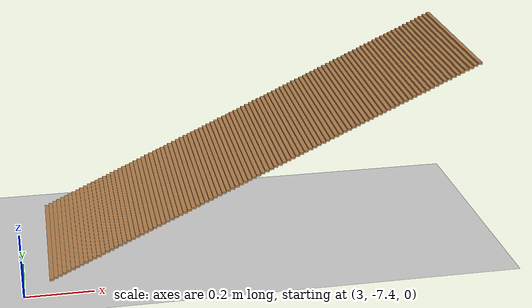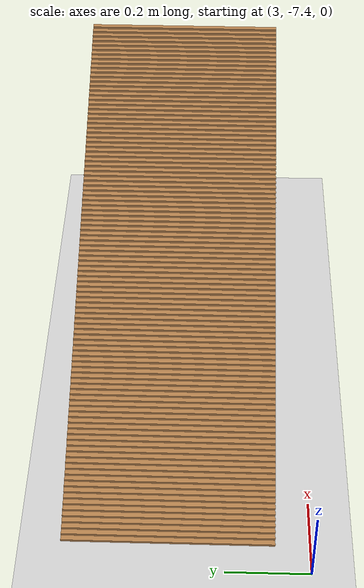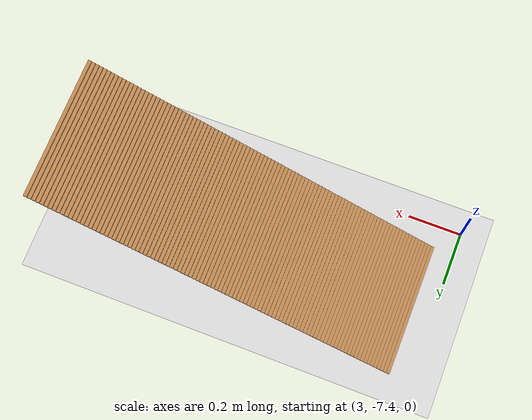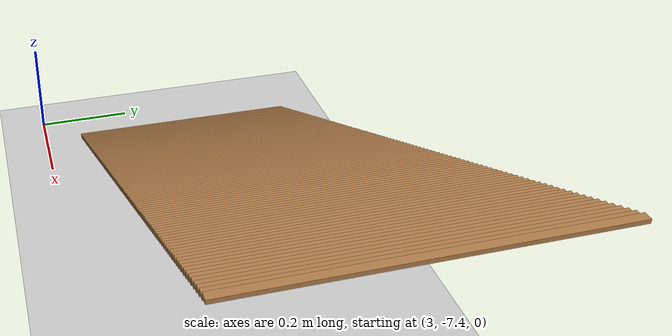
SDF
<sdf version="1.7">
 <world name="default">
  <model name="ground_plane">
   <static>1</static>
   <link name="link">
    <collision name="collision">
     <geometry><plane><normal>0 0 1</normal><size>100 100</size></plane></geometry>
     <surface>
      <contact><collide_bitmask>65535</collide_bitmask></contact>
      <friction><ode><mu>100</mu><mu2>50</mu2></ode></friction>
     </surface>
    </collision>
    <visual name="visual">
     <cast_shadows>0</cast_shadows>
     <geometry><plane><normal>0 0 1</normal><size>100 100</size></plane></geometry>
     <material>
      <script><uri>file://media/materials/scripts/gazebo.material</uri><name>Gazebo/Grey</name></script>
     </material>
    </visual>
   </link>
  </model>
  <model name="arena">
   <pose>3.40282 -3.41988 0 0 0 -1.57675</pose>
   <link name="Stairs_11">
    <visual name="Stairs_11_Visual_0">
     <pose>3.65016 -0.298124 0.003 0 0 -3.14159</pose>
     <geometry><box><size>0.501 0.0129 0.006</size></box></geometry>
     <material>
      <script><uri>file://media/materials/scripts/gazebo.material</uri><name>Gazebo/Wood</name></script>
      <ambient>1 1 1 1</ambient>
     </material>
     <meta><layer>0</layer></meta>
    </visual>
    <collision name="Stairs_11_Collision_0">
     <geometry><box><size>0.501 0.0129 0.006</size></box></geometry>
     <pose>3.65016 -0.298124 0.003 0 0 -3.14159</pose>
    </collision>
    <visual name="Stairs_11_Visual_1">
     <pose>3.65016 -0.285224 0.009 0 0 -3.14159</pose>
     <geometry><box><size>0.501 0.0129 0.006</size></box></geometry>
     <material>
      <script><uri>file://media/materials/scripts/gazebo.material</uri><name>Gazebo/Wood</name></script>
      <ambient>1 1 1 1</ambient>
     </material>
     <meta><layer>0</layer></meta>
    </visual>
    <collision name="Stairs_11_Collision_1">
     <geometry><box><size>0.501 0.0129 0.006</size></box></geometry>
     <pose>3.65016 -0.285224 0.009 0 0 -3.14159</pose>
    </collision>
    <visual name="Stairs_11_Visual_2">
     <pose>3.65016 -0.272324 0.015 0 0 -3.14159</pose>
     <geometry><box><size>0.501 0.0129 0.006</size></box></geometry>
     <material>
      <script><uri>file://media/materials/scripts/gazebo.material</uri><name>Gazebo/Wood</name></script>
      <ambient>1 1 1 1</ambient>
     </material>
     <meta><layer>0</layer></meta>
    </visual>
    <collision name="Stairs_11_Collision_2">
     <geometry><box><size>0.501 0.0129 0.006</size></box></geometry>
     <pose>3.65016 -0.272324 0.015 0 0 -3.14159</pose>
    </collision>
    <visual name="Stairs_11_Visual_3">
     <pose>3.65016 -0.259424 0.021 0 0 -3.14159</pose>
     <geometry><box><size>0.501 0.0129 0.006</size></box></geometry>
     <material>
      <script><uri>file://media/materials/scripts/gazebo.material</uri><name>Gazebo/Wood</name></script>
      <ambient>1 1 1 1</ambient>
     </material>
     <meta><layer>0</layer></meta>
    </visual>
    <collision name="Stairs_11_Collision_3">
     <geometry><box><size>0.501 0.0129 0.006</size></box></geometry>
     <pose>3.65016 -0.259424 0.021 0 0 -3.14159</pose>
    </collision>
    <visual name="Stairs_11_Visual_4">
     <pose>3.65016 -0.246524 0.027 0 0 -3.14159</pose>
     <geometry><box><size>0.501 0.0129 0.006</size></box></geometry>
     <material>
      <script><uri>file://media/materials/scripts/gazebo.material</uri><name>Gazebo/Wood</name></script>
      <ambient>1 1 1 1</ambient>
     </material>
     <meta><layer>0</layer></meta>
    </visual>
    <collision name="Stairs_11_Collision_4">
     <geometry><box><size>0.501 0.0129 0.006</size></box></geometry>
     <pose>3.65016 -0.246524 0.027 0 0 -3.14159</pose>
    </collision>
    <visual name="Stairs_11_Visual_5">
     <pose>3.65016 -0.233624 0.033 0 0 -3.14159</pose>
     <geometry><box><size>0.501 0.0129 0.006</size></box></geometry>
     <material>
      <script><uri>file://media/materials/scripts/gazebo.material</uri><name>Gazebo/Wood</name></script>
      <ambient>1 1 1 1</ambient>
     </material>
     <meta><layer>0</layer></meta>
    </visual>
    <collision name="Stairs_11_Collision_5">
     <geometry><box><size>0.501 0.0129 0.006</size></box></geometry>
     <pose>3.65016 -0.233624 0.033 0 0 -3.14159</pose>
    </collision>
    <visual name="Stairs_11_Visual_6">
     <pose>3.65016 -0.220724 0.039 0 0 -3.14159</pose>
     <geometry><box><size>0.501 0.0129 0.006</size></box></geometry>
     <material>
      <script><uri>file://media/materials/scripts/gazebo.material</uri><name>Gazebo/Wood</name></script>
      <ambient>1 1 1 1</ambient>
     </material>
     <meta><layer>0</layer></meta>
    </visual>
    <collision name="Stairs_11_Collision_6">
     <geometry><box><size>0.501 0.0129 0.006</size></box></geometry>
     <pose>3.65016 -0.220724 0.039 0 0 -3.14159</pose>
    </collision>
    <visual name="Stairs_11_Visual_7">
     <pose>3.65016 -0.207824 0.045 0 0 -3.14159</pose>
     <geometry><box><size>0.501 0.0129 0.006</size></box></geometry>
     <material>
      <script><uri>file://media/materials/scripts/gazebo.material</uri><name>Gazebo/Wood</name></script>
      <ambient>1 1 1 1</ambient>
     </material>
     <meta><layer>0</layer></meta>
    </visual>
    <collision name="Stairs_11_Collision_7">
     <geometry><box><size>0.501 0.0129 0.006</size></box></geometry>
     <pose>3.65016 -0.207824 0.045 0 0 -3.14159</pose>
    </collision>
    <visual name="Stairs_11_Visual_8">
     <pose>3.65016 -0.194924 0.051 0 0 -3.14159</pose>
     <geometry><box><size>0.501 0.0129 0.006</size></box></geometry>
     <material>
      <script><uri>file://media/materials/scripts/gazebo.material</uri><name>Gazebo/Wood</name></script>
      <ambient>1 1 1 1</ambient>
     </material>
     <meta><layer>0</layer></meta>
    </visual>
    <collision name="Stairs_11_Collision_8">
     <geometry><box><size>0.501 0.0129 0.006</size></box></geometry>
     <pose>3.65016 -0.194924 0.051 0 0 -3.14159</pose>
    </collision>
    <visual name="Stairs_11_Visual_9">
     <pose>3.65016 -0.182024 0.057 0 0 -3.14159</pose>
     <geometry><box><size>0.501 0.0129 0.006</size></box></geometry>
     <material>
      <script><uri>file://media/materials/scripts/gazebo.material</uri><name>Gazebo/Wood</name></script>
      <ambient>1 1 1 1</ambient>
     </material>
     <meta><layer>0</layer></meta>
    </visual>
    <collision name="Stairs_11_Collision_9">
     <geometry><box><size>0.501 0.0129 0.006</size></box></geometry>
     <pose>3.65016 -0.182024 0.057 0 0 -3.14159</pose>
    </collision>
    <visual name="Stairs_11_Visual_10">
     <pose>3.65016 -0.169124 0.063 0 0 -3.14159</pose>
     <geometry><box><size>0.501 0.0129 0.006</size></box></geometry>
     <material>
      <script><uri>file://media/materials/scripts/gazebo.material</uri><name>Gazebo/Wood</name></script>
      <ambient>1 1 1 1</ambient>
     </material>
     <meta><layer>0</layer></meta>
    </visual>
    <collision name="Stairs_11_Collision_10">
     <geometry><box><size>0.501 0.0129 0.006</size></box></geometry>
     <pose>3.65016 -0.169124 0.063 0 0 -3.14159</pose>
    </collision>
    <visual name="Stairs_11_Visual_11">
     <pose>3.65016 -0.156224 0.069 0 0 -3.14159</pose>
     <geometry><box><size>0.501 0.0129 0.006</size></box></geometry>
     <material>
      <script><uri>file://media/materials/scripts/gazebo.material</uri><name>Gazebo/Wood</name></script>
      <ambient>1 1 1 1</ambient>
     </material>
     <meta><layer>0</layer></meta>
    </visual>
    <collision name="Stairs_11_Collision_11">
     <geometry><box><size>0.501 0.0129 0.006</size></box></geometry>
     <pose>3.65016 -0.156224 0.069 0 0 -3.14159</pose>
    </collision>
    <visual name="Stairs_11_Visual_12">
     <pose>3.65016 -0.143324 0.075 0 0 -3.14159</pose>
     <geometry><box><size>0.501 0.0129 0.006</size></box></geometry>
     <material>
      <script><uri>file://media/materials/scripts/gazebo.material</uri><name>Gazebo/Wood</name></script>
      <ambient>1 1 1 1</ambient>
     </material>
     <meta><layer>0</layer></meta>
    </visual>
    <collision name="Stairs_11_Collision_12">
     <geometry><box><size>0.501 0.0129 0.006</size></box></geometry>
     <pose>3.65016 -0.143324 0.075 0 0 -3.14159</pose>
    </collision>
    <visual name="Stairs_11_Visual_13">
     <pose>3.65016 -0.130424 0.081 0 0 -3.14159</pose>
     <geometry><box><size>0.501 0.0129 0.006</size></box></geometry>
     <material>
      <script><uri>file://media/materials/scripts/gazebo.material</uri><name>Gazebo/Wood</name></script>
      <ambient>1 1 1 1</ambient>
     </material>
     <meta><layer>0</layer></meta>
    </visual>
    <collision name="Stairs_11_Collision_13">
     <geometry><box><size>0.501 0.0129 0.006</size></box></geometry>
     <pose>3.65016 -0.130424 0.081 0 0 -3.14159</pose>
    </collision>
    <visual name="Stairs_11_Visual_14">
     <pose>3.65016 -0.117524 0.087 0 0 -3.14159</pose>
     <geometry><box><size>0.501 0.0129 0.006</size></box></geometry>
     <material>
      <script><uri>file://media/materials/scripts/gazebo.material</uri><name>Gazebo/Wood</name></script>
      <ambient>1 1 1 1</ambient>
     </material>
     <meta><layer>0</layer></meta>
    </visual>
    <collision name="Stairs_11_Collision_14">
     <geometry><box><size>0.501 0.0129 0.006</size></box></geometry>
     <pose>3.65016 -0.117524 0.087 0 0 -3.14159</pose>
    </collision>
    <visual name="Stairs_11_Visual_15">
     <pose>3.65016 -0.104624 0.093 0 0 -3.14159</pose>
     <geometry><box><size>0.501 0.0129 0.006</size></box></geometry>
     <material>
      <script><uri>file://media/materials/scripts/gazebo.material</uri><name>Gazebo/Wood</name></script>
      <ambient>1 1 1 1</ambient>
     </material>
     <meta><layer>0</layer></meta>
    </visual>
    <collision name="Stairs_11_Collision_15">
     <geometry><box><size>0.501 0.0129 0.006</size></box></geometry>
     <pose>3.65016 -0.104624 0.093 0 0 -3.14159</pose>
    </collision>
    <visual name="Stairs_11_Visual_16">
     <pose>3.65016 -0.091724 0.099 0 0 -3.14159</pose>
     <geometry><box><size>0.501 0.0129 0.006</size></box></geometry>
     <material>
      <script><uri>file://media/materials/scripts/gazebo.material</uri><name>Gazebo/Wood</name></script>
      <ambient>1 1 1 1</ambient>
     </material>
     <meta><layer>0</layer></meta>
    </visual>
    <collision name="Stairs_11_Collision_16">
     <geometry><box><size>0.501 0.0129 0.006</size></box></geometry>
     <pose>3.65016 -0.091724 0.099 0 0 -3.14159</pose>
    </collision>
    <visual name="Stairs_11_Visual_17">
     <pose>3.65016 -0.078824 0.105 0 0 -3.14159</pose>
     <geometry><box><size>0.501 0.0129 0.006</size></box></geometry>
     <material>
      <script><uri>file://media/materials/scripts/gazebo.material</uri><name>Gazebo/Wood</name></script>
      <ambient>1 1 1 1</ambient>
     </material>
     <meta><layer>0</layer></meta>
    </visual>
    <collision name="Stairs_11_Collision_17">
     <geometry><box><size>0.501 0.0129 0.006</size></box></geometry>
     <pose>3.65016 -0.078824 0.105 0 0 -3.14159</pose>
    </collision>
    <visual name="Stairs_11_Visual_18">
     <pose>3.65016 -0.065924 0.111 0 0 -3.14159</pose>
     <geometry><box><size>0.501 0.0129 0.006</size></box></geometry>
     <material>
      <script><uri>file://media/materials/scripts/gazebo.material</uri><name>Gazebo/Wood</name></script>
      <ambient>1 1 1 1</ambient>
     </material>
     <meta><layer>0</layer></meta>
    </visual>
    <collision name="Stairs_11_Collision_18">
     <geometry><box><size>0.501 0.0129 0.006</size></box></geometry>
     <pose>3.65016 -0.065924 0.111 0 0 -3.14159</pose>
    </collision>
    <visual name="Stairs_11_Visual_19">
     <pose>3.65016 -0.053024 0.117 0 0 -3.14159</pose>
     <geometry><box><size>0.501 0.0129 0.006</size></box></geometry>
     <material>
      <script><uri>file://media/materials/scripts/gazebo.material</uri><name>Gazebo/Wood</name></script>
      <ambient>1 1 1 1</ambient>
     </material>
     <meta><layer>0</layer></meta>
    </visual>
    <collision name="Stairs_11_Collision_19">
     <geometry><box><size>0.501 0.0129 0.006</size></box></geometry>
     <pose>3.65016 -0.053024 0.117 0 0 -3.14159</pose>
    </collision>
    <visual name="Stairs_11_Visual_20">
     <pose>3.65016 -0.040124 0.123 0 0 -3.14159</pose>
     <geometry><box><size>0.501 0.0129 0.006</size></box></geometry>
     <material>
      <script><uri>file://media/materials/scripts/gazebo.material</uri><name>Gazebo/Wood</name></script>
      <ambient>1 1 1 1</ambient>
     </material>
     <meta><layer>0</layer></meta>
    </visual>
    <collision name="Stairs_11_Collision_20">
     <geometry><box><size>0.501 0.0129 0.006</size></box></geometry>
     <pose>3.65016 -0.040124 0.123 0 0 -3.14159</pose>
    </collision>
    <visual name="Stairs_11_Visual_21">
     <pose>3.65016 -0.027224 0.129 0 0 -3.14159</pose>
     <geometry><box><size>0.501 0.0129 0.006</size></box></geometry>
     <material>
      <script><uri>file://media/materials/scripts/gazebo.material</uri><name>Gazebo/Wood</name></script>
      <ambient>1 1 1 1</ambient>
     </material>
     <meta><layer>0</layer></meta>
    </visual>
    <collision name="Stairs_11_Collision_21">
     <geometry><box><size>0.501 0.0129 0.006</size></box></geometry>
     <pose>3.65016 -0.027224 0.129 0 0 -3.14159</pose>
    </collision>
    <visual name="Stairs_11_Visual_22">
     <pose>3.65016 -0.014324 0.135 0 0 -3.14159</pose>
     <geometry><box><size>0.501 0.0129 0.006</size></box></geometry>
     <material>
      <script><uri>file://media/materials/scripts/gazebo.material</uri><name>Gazebo/Wood</name></script>
      <ambient>1 1 1 1</ambient>
     </material>
     <meta><layer>0</layer></meta>
    </visual>
    <collision name="Stairs_11_Collision_22">
     <geometry><box><size>0.501 0.0129 0.006</size></box></geometry>
     <pose>3.65016 -0.014324 0.135 0 0 -3.14159</pose>
    </collision>
    <visual name="Stairs_11_Visual_23">
     <pose>3.65016 -0.001424 0.141 0 0 -3.14159</pose>
     <geometry><box><size>0.501 0.0129 0.006</size></box></geometry>
     <material>
      <script><uri>file://media/materials/scripts/gazebo.material</uri><name>Gazebo/Wood</name></script>
      <ambient>1 1 1 1</ambient>
     </material>
     <meta><layer>0</layer></meta>
    </visual>
    <collision name="Stairs_11_Collision_23">
     <geometry><box><size>0.501 0.0129 0.006</size></box></geometry>
     <pose>3.65016 -0.001424 0.141 0 0 -3.14159</pose>
    </collision>
    <visual name="Stairs_11_Visual_24">
     <pose>3.65016 0.011476 0.147 0 0 -3.14159</pose>
     <geometry><box><size>0.501 0.0129 0.006</size></box></geometry>
     <material>
      <script><uri>file://media/materials/scripts/gazebo.material</uri><name>Gazebo/Wood</name></script>
      <ambient>1 1 1 1</ambient>
     </material>
     <meta><layer>0</layer></meta>
    </visual>
    <collision name="Stairs_11_Collision_24">
     <geometry><box><size>0.501 0.0129 0.006</size></box></geometry>
     <pose>3.65016 0.011476 0.147 0 0 -3.14159</pose>
    </collision>
    <visual name="Stairs_11_Visual_25">
     <pose>3.65016 0.024376 0.153 0 0 -3.14159</pose>
     <geometry><box><size>0.501 0.0129 0.006</size></box></geometry>
     <material>
      <script><uri>file://media/materials/scripts/gazebo.material</uri><name>Gazebo/Wood</name></script>
      <ambient>1 1 1 1</ambient>
     </material>
     <meta><layer>0</layer></meta>
    </visual>
    <collision name="Stairs_11_Collision_25">
     <geometry><box><size>0.501 0.0129 0.006</size></box></geometry>
     <pose>3.65016 0.024376 0.153 0 0 -3.14159</pose>
    </collision>
    <visual name="Stairs_11_Visual_26">
     <pose>3.65016 0.037276 0.159 0 0 -3.14159</pose>
     <geometry><box><size>0.501 0.0129 0.006</size></box></geometry>
     <material>
      <script><uri>file://media/materials/scripts/gazebo.material</uri><name>Gazebo/Wood</name></script>
      <ambient>1 1 1 1</ambient>
     </material>
     <meta><layer>0</layer></meta>
    </visual>
    <collision name="Stairs_11_Collision_26">
     <geometry><box><size>0.501 0.0129 0.006</size></box></geometry>
     <pose>3.65016 0.037276 0.159 0 0 -3.14159</pose>
    </collision>
    <visual name="Stairs_11_Visual_27">
     <pose>3.65016 0.050176 0.165 0 0 -3.14159</pose>
     <geometry><box><size>0.501 0.0129 0.006</size></box></geometry>
     <material>
      <script><uri>file://media/materials/scripts/gazebo.material</uri><name>Gazebo/Wood</name></script>
      <ambient>1 1 1 1</ambient>
     </material>
     <meta><layer>0</layer></meta>
    </visual>
    <collision name="Stairs_11_Collision_27">
     <geometry><box><size>0.501 0.0129 0.006</size></box></geometry>
     <pose>3.65016 0.050176 0.165 0 0 -3.14159</pose>
    </collision>
    <visual name="Stairs_11_Visual_28">
     <pose>3.65016 0.063076 0.171 0 0 -3.14159</pose>
     <geometry><box><size>0.501 0.0129 0.006</size></box></geometry>
     <material>
      <script><uri>file://media/materials/scripts/gazebo.material</uri><name>Gazebo/Wood</name></script>
      <ambient>1 1 1 1</ambient>
     </material>
     <meta><layer>0</layer></meta>
    </visual>
    <collision name="Stairs_11_Collision_28">
     <geometry><box><size>0.501 0.0129 0.006</size></box></geometry>
     <pose>3.65016 0.063076 0.171 0 0 -3.14159</pose>
    </collision>
    <visual name="Stairs_11_Visual_29">
     <pose>3.65016 0.075976 0.177 0 0 -3.14159</pose>
     <geometry><box><size>0.501 0.0129 0.006</size></box></geometry>
     <material>
      <script><uri>file://media/materials/scripts/gazebo.material</uri><name>Gazebo/Wood</name></script>
      <ambient>1 1 1 1</ambient>
     </material>
     <meta><layer>0</layer></meta>
    </visual>
    <collision name="Stairs_11_Collision_29">
     <geometry><box><size>0.501 0.0129 0.006</size></box></geometry>
     <pose>3.65016 0.075976 0.177 0 0 -3.14159</pose>
    </collision>
    <visual name="Stairs_11_Visual_30">
     <pose>3.65016 0.088876 0.183 0 0 -3.14159</pose>
     <geometry><box><size>0.501 0.0129 0.006</size></box></geometry>
     <material>
      <script><uri>file://media/materials/scripts/gazebo.material</uri><name>Gazebo/Wood</name></script>
      <ambient>1 1 1 1</ambient>
     </material>
     <meta><layer>0</layer></meta>
    </visual>
    <collision name="Stairs_11_Collision_30">
     <geometry><box><size>0.501 0.0129 0.006</size></box></geometry>
     <pose>3.65016 0.088876 0.183 0 0 -3.14159</pose>
    </collision>
    <visual name="Stairs_11_Visual_31">
     <pose>3.65016 0.101776 0.189 0 0 -3.14159</pose>
     <geometry><box><size>0.501 0.0129 0.006</size></box></geometry>
     <material>
      <script><uri>file://media/materials/scripts/gazebo.material</uri><name>Gazebo/Wood</name></script>
      <ambient>1 1 1 1</ambient>
     </material>
     <meta><layer>0</layer></meta>
    </visual>
    <collision name="Stairs_11_Collision_31">
     <geometry><box><size>0.501 0.0129 0.006</size></box></geometry>
     <pose>3.65016 0.101776 0.189 0 0 -3.14159</pose>
    </collision>
    <visual name="Stairs_11_Visual_32">
     <pose>3.65016 0.114676 0.195 0 0 -3.14159</pose>
     <geometry><box><size>0.501 0.0129 0.006</size></box></geometry>
     <material>
      <script><uri>file://media/materials/scripts/gazebo.material</uri><name>Gazebo/Wood</name></script>
      <ambient>1 1 1 1</ambient>
     </material>
     <meta><layer>0</layer></meta>
    </visual>
    <collision name="Stairs_11_Collision_32">
     <geometry><box><size>0.501 0.0129 0.006</size></box></geometry>
     <pose>3.65016 0.114676 0.195 0 0 -3.14159</pose>
    </collision>
    <visual name="Stairs_11_Visual_33">
     <pose>3.65016 0.127576 0.201 0 0 -3.14159</pose>
     <geometry><box><size>0.501 0.0129 0.006</size></box></geometry>
     <material>
      <script><uri>file://media/materials/scripts/gazebo.material</uri><name>Gazebo/Wood</name></script>
      <ambient>1 1 1 1</ambient>
     </material>
     <meta><layer>0</layer></meta>
    </visual>
    <collision name="Stairs_11_Collision_33">
     <geometry><box><size>0.501 0.0129 0.006</size></box></geometry>
     <pose>3.65016 0.127576 0.201 0 0 -3.14159</pose>
    </collision>
    <visual name="Stairs_11_Visual_34">
     <pose>3.65016 0.140476 0.207 0 0 -3.14159</pose>
     <geometry><box><size>0.501 0.0129 0.006</size></box></geometry>
     <material>
      <script><uri>file://media/materials/scripts/gazebo.material</uri><name>Gazebo/Wood</name></script>
      <ambient>1 1 1 1</ambient>
     </material>
     <meta><layer>0</layer></meta>
    </visual>
    <collision name="Stairs_11_Collision_34">
     <geometry><box><size>0.501 0.0129 0.006</size></box></geometry>
     <pose>3.65016 0.140476 0.207 0 0 -3.14159</pose>
    </collision>
    <visual name="Stairs_11_Visual_35">
     <pose>3.65016 0.153376 0.213 0 0 -3.14159</pose>
     <geometry><box><size>0.501 0.0129 0.006</size></box></geometry>
     <material>
      <script><uri>file://media/materials/scripts/gazebo.material</uri><name>Gazebo/Wood</name></script>
      <ambient>1 1 1 1</ambient>
     </material>
     <meta><layer>0</layer></meta>
    </visual>
    <collision name="Stairs_11_Collision_35">
     <geometry><box><size>0.501 0.0129 0.006</size></box></geometry>
     <pose>3.65016 0.153376 0.213 0 0 -3.14159</pose>
    </collision>
    <visual name="Stairs_11_Visual_36">
     <pose>3.65016 0.166276 0.219 0 0 -3.14159</pose>
     <geometry><box><size>0.501 0.0129 0.006</size></box></geometry>
     <material>
      <script><uri>file://media/materials/scripts/gazebo.material</uri><name>Gazebo/Wood</name></script>
      <ambient>1 1 1 1</ambient>
     </material>
     <meta><layer>0</layer></meta>
    </visual>
    <collision name="Stairs_11_Collision_36">
     <geometry><box><size>0.501 0.0129 0.006</size></box></geometry>
     <pose>3.65016 0.166276 0.219 0 0 -3.14159</pose>
    </collision>
    <visual name="Stairs_11_Visual_37">
     <pose>3.65016 0.179176 0.225 0 0 -3.14159</pose>
     <geometry><box><size>0.501 0.0129 0.006</size></box></geometry>
     <material>
      <script><uri>file://media/materials/scripts/gazebo.material</uri><name>Gazebo/Wood</name></script>
      <ambient>1 1 1 1</ambient>
     </material>
     <meta><layer>0</layer></meta>
    </visual>
    <collision name="Stairs_11_Collision_37">
     <geometry><box><size>0.501 0.0129 0.006</size></box></geometry>
     <pose>3.65016 0.179176 0.225 0 0 -3.14159</pose>
    </collision>
    <visual name="Stairs_11_Visual_38">
     <pose>3.65016 0.192076 0.231 0 0 -3.14159</pose>
     <geometry><box><size>0.501 0.0129 0.006</size></box></geometry>
     <material>
      <script><uri>file://media/materials/scripts/gazebo.material</uri><name>Gazebo/Wood</name></script>
      <ambient>1 1 1 1</ambient>
     </material>
     <meta><layer>0</layer></meta>
    </visual>
    <collision name="Stairs_11_Collision_38">
     <geometry><box><size>0.501 0.0129 0.006</size></box></geometry>
     <pose>3.65016 0.192076 0.231 0 0 -3.14159</pose>
    </collision>
    <visual name="Stairs_11_Visual_39">
     <pose>3.65016 0.204976 0.237 0 0 -3.14159</pose>
     <geometry><box><size>0.501 0.0129 0.006</size></box></geometry>
     <material>
      <script><uri>file://media/materials/scripts/gazebo.material</uri><name>Gazebo/Wood</name></script>
      <ambient>1 1 1 1</ambient>
     </material>
     <meta><layer>0</layer></meta>
    </visual>
    <collision name="Stairs_11_Collision_39">
     <geometry><box><size>0.501 0.0129 0.006</size></box></geometry>
     <pose>3.65016 0.204976 0.237 0 0 -3.14159</pose>
    </collision>
    <visual name="Stairs_11_Visual_40">
     <pose>3.65016 0.217876 0.243 0 0 -3.14159</pose>
     <geometry><box><size>0.501 0.0129 0.006</size></box></geometry>
     <material>
      <script><uri>file://media/materials/scripts/gazebo.material</uri><name>Gazebo/Wood</name></script>
      <ambient>1 1 1 1</ambient>
     </material>
     <meta><layer>0</layer></meta>
    </visual>
    <collision name="Stairs_11_Collision_40">
     <geometry><box><size>0.501 0.0129 0.006</size></box></geometry>
     <pose>3.65016 0.217876 0.243 0 0 -3.14159</pose>
    </collision>
    <visual name="Stairs_11_Visual_41">
     <pose>3.65016 0.230776 0.249 0 0 -3.14159</pose>
     <geometry><box><size>0.501 0.0129 0.006</size></box></geometry>
     <material>
      <script><uri>file://media/materials/scripts/gazebo.material</uri><name>Gazebo/Wood</name></script>
      <ambient>1 1 1 1</ambient>
     </material>
     <meta><layer>0</layer></meta>
    </visual>
    <collision name="Stairs_11_Collision_41">
     <geometry><box><size>0.501 0.0129 0.006</size></box></geometry>
     <pose>3.65016 0.230776 0.249 0 0 -3.14159</pose>
    </collision>
    <visual name="Stairs_11_Visual_42">
     <pose>3.65016 0.243676 0.255 0 0 -3.14159</pose>
     <geometry><box><size>0.501 0.0129 0.006</size></box></geometry>
     <material>
      <script><uri>file://media/materials/scripts/gazebo.material</uri><name>Gazebo/Wood</name></script>
      <ambient>1 1 1 1</ambient>
     </material>
     <meta><layer>0</layer></meta>
    </visual>
    <collision name="Stairs_11_Collision_42">
     <geometry><box><size>0.501 0.0129 0.006</size></box></geometry>
     <pose>3.65016 0.243676 0.255 0 0 -3.14159</pose>
    </collision>
    <visual name="Stairs_11_Visual_43">
     <pose>3.65016 0.256576 0.261 0 0 -3.14159</pose>
     <geometry><box><size>0.501 0.0129 0.006</size></box></geometry>
     <material>
      <script><uri>file://media/materials/scripts/gazebo.material</uri><name>Gazebo/Wood</name></script>
      <ambient>1 1 1 1</ambient>
     </material>
     <meta><layer>0</layer></meta>
    </visual>
    <collision name="Stairs_11_Collision_43">
     <geometry><box><size>0.501 0.0129 0.006</size></box></geometry>
     <pose>3.65016 0.256576 0.261 0 0 -3.14159</pose>
    </collision>
    <visual name="Stairs_11_Visual_44">
     <pose>3.65016 0.269476 0.267 0 0 -3.14159</pose>
     <geometry><box><size>0.501 0.0129 0.006</size></box></geometry>
     <material>
      <script><uri>file://media/materials/scripts/gazebo.material</uri><name>Gazebo/Wood</name></script>
      <ambient>1 1 1 1</ambient>
     </material>
     <meta><layer>0</layer></meta>
    </visual>
    <collision name="Stairs_11_Collision_44">
     <geometry><box><size>0.501 0.0129 0.006</size></box></geometry>
     <pose>3.65016 0.269476 0.267 0 0 -3.14159</pose>
    </collision>
    <visual name="Stairs_11_Visual_45">
     <pose>3.65016 0.282376 0.273 0 0 -3.14159</pose>
     <geometry><box><size>0.501 0.0129 0.006</size></box></geometry>
     <material>
      <script><uri>file://media/materials/scripts/gazebo.material</uri><name>Gazebo/Wood</name></script>
      <ambient>1 1 1 1</ambient>
     </material>
     <meta><layer>0</layer></meta>
    </visual>
    <collision name="Stairs_11_Collision_45">
     <geometry><box><size>0.501 0.0129 0.006</size></box></geometry>
     <pose>3.65016 0.282376 0.273 0 0 -3.14159</pose>
    </collision>
    <visual name="Stairs_11_Visual_46">
     <pose>3.65016 0.295276 0.279 0 0 -3.14159</pose>
     <geometry><box><size>0.501 0.0129 0.006</size></box></geometry>
     <material>
      <script><uri>file://media/materials/scripts/gazebo.material</uri><name>Gazebo/Wood</name></script>
      <ambient>1 1 1 1</ambient>
     </material>
     <meta><layer>0</layer></meta>
    </visual>
    <collision name="Stairs_11_Collision_46">
     <geometry><box><size>0.501 0.0129 0.006</size></box></geometry>
     <pose>3.65016 0.295276 0.279 0 0 -3.14159</pose>
    </collision>
    <visual name="Stairs_11_Visual_47">
     <pose>3.65016 0.308176 0.285 0 0 -3.14159</pose>
     <geometry><box><size>0.501 0.0129 0.006</size></box></geometry>
     <material>
      <script><uri>file://media/materials/scripts/gazebo.material</uri><name>Gazebo/Wood</name></script>
      <ambient>1 1 1 1</ambient>
     </material>
     <meta><layer>0</layer></meta>
    </visual>
    <collision name="Stairs_11_Collision_47">
     <geometry><box><size>0.501 0.0129 0.006</size></box></geometry>
     <pose>3.65016 0.308176 0.285 0 0 -3.14159</pose>
    </collision>
    <visual name="Stairs_11_Visual_48">
     <pose>3.65016 0.321076 0.291 0 0 -3.14159</pose>
     <geometry><box><size>0.501 0.0129 0.006</size></box></geometry>
     <material>
      <script><uri>file://media/materials/scripts/gazebo.material</uri><name>Gazebo/Wood</name></script>
      <ambient>1 1 1 1</ambient>
     </material>
     <meta><layer>0</layer></meta>
    </visual>
    <collision name="Stairs_11_Collision_48">
     <geometry><box><size>0.501 0.0129 0.006</size></box></geometry>
     <pose>3.65016 0.321076 0.291 0 0 -3.14159</pose>
    </collision>
    <visual name="Stairs_11_Visual_49">
     <pose>3.65016 0.333976 0.297 0 0 -3.14159</pose>
     <geometry><box><size>0.501 0.0129 0.006</size></box></geometry>
     <material>
      <script><uri>file://media/materials/scripts/gazebo.material</uri><name>Gazebo/Wood</name></script>
      <ambient>1 1 1 1</ambient>
     </material>
     <meta><layer>0</layer></meta>
    </visual>
    <collision name="Stairs_11_Collision_49">
     <geometry><box><size>0.501 0.0129 0.006</size></box></geometry>
     <pose>3.65016 0.333976 0.297 0 0 -3.14159</pose>
    </collision>
    <visual name="Stairs_11_Visual_50">
     <pose>3.65016 0.346876 0.303 0 0 -3.14159</pose>
     <geometry><box><size>0.501 0.0129 0.006</size></box></geometry>
     <material>
      <script><uri>file://media/materials/scripts/gazebo.material</uri><name>Gazebo/Wood</name></script>
      <ambient>1 1 1 1</ambient>
     </material>
     <meta><layer>0</layer></meta>
    </visual>
    <collision name="Stairs_11_Collision_50">
     <geometry><box><size>0.501 0.0129 0.006</size></box></geometry>
     <pose>3.65016 0.346876 0.303 0 0 -3.14159</pose>
    </collision>
    <visual name="Stairs_11_Visual_51">
     <pose>3.65016 0.359776 0.309 0 0 -3.14159</pose>
     <geometry><box><size>0.501 0.0129 0.006</size></box></geometry>
     <material>
      <script><uri>file://media/materials/scripts/gazebo.material</uri><name>Gazebo/Wood</name></script>
      <ambient>1 1 1 1</ambient>
     </material>
     <meta><layer>0</layer></meta>
    </visual>
    <collision name="Stairs_11_Collision_51">
     <geometry><box><size>0.501 0.0129 0.006</size></box></geometry>
     <pose>3.65016 0.359776 0.309 0 0 -3.14159</pose>
    </collision>
    <visual name="Stairs_11_Visual_52">
     <pose>3.65016 0.372676 0.315 0 0 -3.14159</pose>
     <geometry><box><size>0.501 0.0129 0.006</size></box></geometry>
     <material>
      <script><uri>file://media/materials/scripts/gazebo.material</uri><name>Gazebo/Wood</name></script>
      <ambient>1 1 1 1</ambient>
     </material>
     <meta><layer>0</layer></meta>
    </visual>
    <collision name="Stairs_11_Collision_52">
     <geometry><box><size>0.501 0.0129 0.006</size></box></geometry>
     <pose>3.65016 0.372676 0.315 0 0 -3.14159</pose>
    </collision>
    <visual name="Stairs_11_Visual_53">
     <pose>3.65016 0.385576 0.321 0 0 -3.14159</pose>
     <geometry><box><size>0.501 0.0129 0.006</size></box></geometry>
     <material>
      <script><uri>file://media/materials/scripts/gazebo.material</uri><name>Gazebo/Wood</name></script>
      <ambient>1 1 1 1</ambient>
     </material>
     <meta><layer>0</layer></meta>
    </visual>
    <collision name="Stairs_11_Collision_53">
     <geometry><box><size>0.501 0.0129 0.006</size></box></geometry>
     <pose>3.65016 0.385576 0.321 0 0 -3.14159</pose>
    </collision>
    <visual name="Stairs_11_Visual_54">
     <pose>3.65016 0.398476 0.327 0 0 -3.14159</pose>
     <geometry><box><size>0.501 0.0129 0.006</size></box></geometry>
     <material>
      <script><uri>file://media/materials/scripts/gazebo.material</uri><name>Gazebo/Wood</name></script>
      <ambient>1 1 1 1</ambient>
     </material>
     <meta><layer>0</layer></meta>
    </visual>
    <collision name="Stairs_11_Collision_54">
     <geometry><box><size>0.501 0.0129 0.006</size></box></geometry>
     <pose>3.65016 0.398476 0.327 0 0 -3.14159</pose>
    </collision>
    <visual name="Stairs_11_Visual_55">
     <pose>3.65016 0.411376 0.333 0 0 -3.14159</pose>
     <geometry><box><size>0.501 0.0129 0.006</size></box></geometry>
     <material>
      <script><uri>file://media/materials/scripts/gazebo.material</uri><name>Gazebo/Wood</name></script>
      <ambient>1 1 1 1</ambient>
     </material>
     <meta><layer>0</layer></meta>
    </visual>
    <collision name="Stairs_11_Collision_55">
     <geometry><box><size>0.501 0.0129 0.006</size></box></geometry>
     <pose>3.65016 0.411376 0.333 0 0 -3.14159</pose>
    </collision>
    <visual name="Stairs_11_Visual_56">
     <pose>3.65016 0.424276 0.339 0 0 -3.14159</pose>
     <geometry><box><size>0.501 0.0129 0.006</size></box></geometry>
     <material>
      <script><uri>file://media/materials/scripts/gazebo.material</uri><name>Gazebo/Wood</name></script>
      <ambient>1 1 1 1</ambient>
     </material>
     <meta><layer>0</layer></meta>
    </visual>
    <collision name="Stairs_11_Collision_56">
     <geometry><box><size>0.501 0.0129 0.006</size></box></geometry>
     <pose>3.65016 0.424276 0.339 0 0 -3.14159</pose>
    </collision>
    <visual name="Stairs_11_Visual_57">
     <pose>3.65016 0.437176 0.345 0 0 -3.14159</pose>
     <geometry><box><size>0.501 0.0129 0.006</size></box></geometry>
     <material>
      <script><uri>file://media/materials/scripts/gazebo.material</uri><name>Gazebo/Wood</name></script>
      <ambient>1 1 1 1</ambient>
     </material>
     <meta><layer>0</layer></meta>
    </visual>
    <collision name="Stairs_11_Collision_57">
     <geometry><box><size>0.501 0.0129 0.006</size></box></geometry>
     <pose>3.65016 0.437176 0.345 0 0 -3.14159</pose>
    </collision>
    <visual name="Stairs_11_Visual_58">
     <pose>3.65016 0.450076 0.351 0 0 -3.14159</pose>
     <geometry><box><size>0.501 0.0129 0.006</size></box></geometry>
     <material>
      <script><uri>file://media/materials/scripts/gazebo.material</uri><name>Gazebo/Wood</name></script>
      <ambient>1 1 1 1</ambient>
     </material>
     <meta><layer>0</layer></meta>
    </visual>
    <collision name="Stairs_11_Collision_58">
     <geometry><box><size>0.501 0.0129 0.006</size></box></geometry>
     <pose>3.65016 0.450076 0.351 0 0 -3.14159</pose>
    </collision>
    <visual name="Stairs_11_Visual_59">
     <pose>3.65016 0.462976 0.357 0 0 -3.14159</pose>
     <geometry><box><size>0.501 0.0129 0.006</size></box></geometry>
     <material>
      <script><uri>file://media/materials/scripts/gazebo.material</uri><name>Gazebo/Wood</name></script>
      <ambient>1 1 1 1</ambient>
     </material>
     <meta><layer>0</layer></meta>
    </visual>
    <collision name="Stairs_11_Collision_59">
     <geometry><box><size>0.501 0.0129 0.006</size></box></geometry>
     <pose>3.65016 0.462976 0.357 0 0 -3.14159</pose>
    </collision>
    <visual name="Stairs_11_Visual_60">
     <pose>3.65016 0.475876 0.363 0 0 -3.14159</pose>
     <geometry><box><size>0.501 0.0129 0.006</size></box></geometry>
     <material>
      <script><uri>file://media/materials/scripts/gazebo.material</uri><name>Gazebo/Wood</name></script>
      <ambient>1 1 1 1</ambient>
     </material>
     <meta><layer>0</layer></meta>
    </visual>
    <collision name="Stairs_11_Collision_60">
     <geometry><box><size>0.501 0.0129 0.006</size></box></geometry>
     <pose>3.65016 0.475876 0.363 0 0 -3.14159</pose>
    </collision>
    <visual name="Stairs_11_Visual_61">
     <pose>3.65016 0.488776 0.369 0 0 -3.14159</pose>
     <geometry><box><size>0.501 0.0129 0.006</size></box></geometry>
     <material>
      <script><uri>file://media/materials/scripts/gazebo.material</uri><name>Gazebo/Wood</name></script>
      <ambient>1 1 1 1</ambient>
     </material>
     <meta><layer>0</layer></meta>
    </visual>
    <collision name="Stairs_11_Collision_61">
     <geometry><box><size>0.501 0.0129 0.006</size></box></geometry>
     <pose>3.65016 0.488776 0.369 0 0 -3.14159</pose>
    </collision>
    <visual name="Stairs_11_Visual_62">
     <pose>3.65016 0.501676 0.375 0 0 -3.14159</pose>
     <geometry><box><size>0.501 0.0129 0.006</size></box></geometry>
     <material>
      <script><uri>file://media/materials/scripts/gazebo.material</uri><name>Gazebo/Wood</name></script>
      <ambient>1 1 1 1</ambient>
     </material>
     <meta><layer>0</layer></meta>
    </visual>
    <collision name="Stairs_11_Collision_62">
     <geometry><box><size>0.501 0.0129 0.006</size></box></geometry>
     <pose>3.65016 0.501676 0.375 0 0 -3.14159</pose>
    </collision>
    <visual name="Stairs_11_Visual_63">
     <pose>3.65016 0.514576 0.381 0 0 -3.14159</pose>
     <geometry><box><size>0.501 0.0129 0.006</size></box></geometry>
     <material>
      <script><uri>file://media/materials/scripts/gazebo.material</uri><name>Gazebo/Wood</name></script>
      <ambient>1 1 1 1</ambient>
     </material>
     <meta><layer>0</layer></meta>
    </visual>
    <collision name="Stairs_11_Collision_63">
     <geometry><box><size>0.501 0.0129 0.006</size></box></geometry>
     <pose>3.65016 0.514576 0.381 0 0 -3.14159</pose>
    </collision>
    <visual name="Stairs_11_Visual_64">
     <pose>3.65016 0.527476 0.387 0 0 -3.14159</pose>
     <geometry><box><size>0.501 0.0129 0.006</size></box></geometry>
     <material>
      <script><uri>file://media/materials/scripts/gazebo.material</uri><name>Gazebo/Wood</name></script>
      <ambient>1 1 1 1</ambient>
     </material>
     <meta><layer>0</layer></meta>
    </visual>
    <collision name="Stairs_11_Collision_64">
     <geometry><box><size>0.501 0.0129 0.006</size></box></geometry>
     <pose>3.65016 0.527476 0.387 0 0 -3.14159</pose>
    </collision>
    <visual name="Stairs_11_Visual_65">
     <pose>3.65016 0.540376 0.393 0 0 -3.14159</pose>
     <geometry><box><size>0.501 0.0129 0.006</size></box></geometry>
     <material>
      <script><uri>file://media/materials/scripts/gazebo.material</uri><name>Gazebo/Wood</name></script>
      <ambient>1 1 1 1</ambient>
     </material>
     <meta><layer>0</layer></meta>
    </visual>
    <collision name="Stairs_11_Collision_65">
     <geometry><box><size>0.501 0.0129 0.006</size></box></geometry>
     <pose>3.65016 0.540376 0.393 0 0 -3.14159</pose>
    </collision>
    <visual name="Stairs_11_Visual_66">
     <pose>3.65016 0.553276 0.399 0 0 -3.14159</pose>
     <geometry><box><size>0.501 0.0129 0.006</size></box></geometry>
     <material>
      <script><uri>file://media/materials/scripts/gazebo.material</uri><name>Gazebo/Wood</name></script>
      <ambient>1 1 1 1</ambient>
     </material>
     <meta><layer>0</layer></meta>
    </visual>
    <collision name="Stairs_11_Collision_66">
     <geometry><box><size>0.501 0.0129 0.006</size></box></geometry>
     <pose>3.65016 0.553276 0.399 0 0 -3.14159</pose>
    </collision>
    <visual name="Stairs_11_Visual_67">
     <pose>3.65016 0.566176 0.405 0 0 -3.14159</pose>
     <geometry><box><size>0.501 0.0129 0.006</size></box></geometry>
     <material>
      <script><uri>file://media/materials/scripts/gazebo.material</uri><name>Gazebo/Wood</name></script>
      <ambient>1 1 1 1</ambient>
     </material>
     <meta><layer>0</layer></meta>
    </visual>
    <collision name="Stairs_11_Collision_67">
     <geometry><box><size>0.501 0.0129 0.006</size></box></geometry>
     <pose>3.65016 0.566176 0.405 0 0 -3.14159</pose>
    </collision>
    <visual name="Stairs_11_Visual_68">
     <pose>3.65016 0.579076 0.411 0 0 -3.14159</pose>
     <geometry><box><size>0.501 0.0129 0.006</size></box></geometry>
     <material>
      <script><uri>file://media/materials/scripts/gazebo.material</uri><name>Gazebo/Wood</name></script>
      <ambient>1 1 1 1</ambient>
     </material>
     <meta><layer>0</layer></meta>
    </visual>
    <collision name="Stairs_11_Collision_68">
     <geometry><box><size>0.501 0.0129 0.006</size></box></geometry>
     <pose>3.65016 0.579076 0.411 0 0 -3.14159</pose>
    </collision>
    <visual name="Stairs_11_Visual_69">
     <pose>3.65016 0.591976 0.417 0 0 -3.14159</pose>
     <geometry><box><size>0.501 0.0129 0.006</size></box></geometry>
     <material>
      <script><uri>file://media/materials/scripts/gazebo.material</uri><name>Gazebo/Wood</name></script>
      <ambient>1 1 1 1</ambient>
     </material>
     <meta><layer>0</layer></meta>
    </visual>
    <collision name="Stairs_11_Collision_69">
     <geometry><box><size>0.501 0.0129 0.006</size></box></geometry>
     <pose>3.65016 0.591976 0.417 0 0 -3.14159</pose>
    </collision>
    <visual name="Stairs_11_Visual_70">
     <pose>3.65016 0.604876 0.423 0 0 -3.14159</pose>
     <geometry><box><size>0.501 0.0129 0.006</size></box></geometry>
     <material>
      <script><uri>file://media/materials/scripts/gazebo.material</uri><name>Gazebo/Wood</name></script>
      <ambient>1 1 1 1</ambient>
     </material>
     <meta><layer>0</layer></meta>
    </visual>
    <collision name="Stairs_11_Collision_70">
     <geometry><box><size>0.501 0.0129 0.006</size></box></geometry>
     <pose>3.65016 0.604876 0.423 0 0 -3.14159</pose>
    </collision>
    <visual name="Stairs_11_Visual_71">
     <pose>3.65016 0.617776 0.429 0 0 -3.14159</pose>
     <geometry><box><size>0.501 0.0129 0.006</size></box></geometry>
     <material>
      <script><uri>file://media/materials/scripts/gazebo.material</uri><name>Gazebo/Wood</name></script>
      <ambient>1 1 1 1</ambient>
     </material>
     <meta><layer>0</layer></meta>
    </visual>
    <collision name="Stairs_11_Collision_71">
     <geometry><box><size>0.501 0.0129 0.006</size></box></geometry>
     <pose>3.65016 0.617776 0.429 0 0 -3.14159</pose>
    </collision>
    <visual name="Stairs_11_Visual_72">
     <pose>3.65016 0.630676 0.435 0 0 -3.14159</pose>
     <geometry><box><size>0.501 0.0129 0.006</size></box></geometry>
     <material>
      <script><uri>file://media/materials/scripts/gazebo.material</uri><name>Gazebo/Wood</name></script>
      <ambient>1 1 1 1</ambient>
     </material>
     <meta><layer>0</layer></meta>
    </visual>
    <collision name="Stairs_11_Collision_72">
     <geometry><box><size>0.501 0.0129 0.006</size></box></geometry>
     <pose>3.65016 0.630676 0.435 0 0 -3.14159</pose>
    </collision>
    <visual name="Stairs_11_Visual_73">
     <pose>3.65016 0.643576 0.441 0 0 -3.14159</pose>
     <geometry><box><size>0.501 0.0129 0.006</size></box></geometry>
     <material>
      <script><uri>file://media/materials/scripts/gazebo.material</uri><name>Gazebo/Wood</name></script>
      <ambient>1 1 1 1</ambient>
     </material>
     <meta><layer>0</layer></meta>
    </visual>
    <collision name="Stairs_11_Collision_73">
     <geometry><box><size>0.501 0.0129 0.006</size></box></geometry>
     <pose>3.65016 0.643576 0.441 0 0 -3.14159</pose>
    </collision>
    <visual name="Stairs_11_Visual_74">
     <pose>3.65016 0.656476 0.447 0 0 -3.14159</pose>
     <geometry><box><size>0.501 0.0129 0.006</size></box></geometry>
     <material>
      <script><uri>file://media/materials/scripts/gazebo.material</uri><name>Gazebo/Wood</name></script>
      <ambient>1 1 1 1</ambient>
     </material>
     <meta><layer>0</layer></meta>
    </visual>
    <collision name="Stairs_11_Collision_74">
     <geometry><box><size>0.501 0.0129 0.006</size></box></geometry>
     <pose>3.65016 0.656476 0.447 0 0 -3.14159</pose>
    </collision>
    <visual name="Stairs_11_Visual_75">
     <pose>3.65016 0.669376 0.453 0 0 -3.14159</pose>
     <geometry><box><size>0.501 0.0129 0.006</size></box></geometry>
     <material>
      <script><uri>file://media/materials/scripts/gazebo.material</uri><name>Gazebo/Wood</name></script>
      <ambient>1 1 1 1</ambient>
     </material>
     <meta><layer>0</layer></meta>
    </visual>
    <collision name="Stairs_11_Collision_75">
     <geometry><box><size>0.501 0.0129 0.006</size></box></geometry>
     <pose>3.65016 0.669376 0.453 0 0 -3.14159</pose>
    </collision>
    <visual name="Stairs_11_Visual_76">
     <pose>3.65016 0.682276 0.459 0 0 -3.14159</pose>
     <geometry><box><size>0.501 0.0129 0.006</size></box></geometry>
     <material>
      <script><uri>file://media/materials/scripts/gazebo.material</uri><name>Gazebo/Wood</name></script>
      <ambient>1 1 1 1</ambient>
     </material>
     <meta><layer>0</layer></meta>
    </visual>
    <collision name="Stairs_11_Collision_76">
     <geometry><box><size>0.501 0.0129 0.006</size></box></geometry>
     <pose>3.65016 0.682276 0.459 0 0 -3.14159</pose>
    </collision>
    <visual name="Stairs_11_Visual_77">
     <pose>3.65016 0.695176 0.465 0 0 -3.14159</pose>
     <geometry><box><size>0.501 0.0129 0.006</size></box></geometry>
     <material>
      <script><uri>file://media/materials/scripts/gazebo.material</uri><name>Gazebo/Wood</name></script>
      <ambient>1 1 1 1</ambient>
     </material>
     <meta><layer>0</layer></meta>
    </visual>
    <collision name="Stairs_11_Collision_77">
     <geometry><box><size>0.501 0.0129 0.006</size></box></geometry>
     <pose>3.65016 0.695176 0.465 0 0 -3.14159</pose>
    </collision>
    <visual name="Stairs_11_Visual_78">
     <pose>3.65016 0.708076 0.471 0 0 -3.14159</pose>
     <geometry><box><size>0.501 0.0129 0.006</size></box></geometry>
     <material>
      <script><uri>file://media/materials/scripts/gazebo.material</uri><name>Gazebo/Wood</name></script>
      <ambient>1 1 1 1</ambient>
     </material>
     <meta><layer>0</layer></meta>
    </visual>
    <collision name="Stairs_11_Collision_78">
     <geometry><box><size>0.501 0.0129 0.006</size></box></geometry>
     <pose>3.65016 0.708076 0.471 0 0 -3.14159</pose>
    </collision>
    <visual name="Stairs_11_Visual_79">
     <pose>3.65016 0.720976 0.477 0 0 -3.14159</pose>
     <geometry><box><size>0.501 0.0129 0.006</size></box></geometry>
     <material>
      <script><uri>file://media/materials/scripts/gazebo.material</uri><name>Gazebo/Wood</name></script>
      <ambient>1 1 1 1</ambient>
     </material>
     <meta><layer>0</layer></meta>
    </visual>
    <collision name="Stairs_11_Collision_79">
     <geometry><box><size>0.501 0.0129 0.006</size></box></geometry>
     <pose>3.65016 0.720976 0.477 0 0 -3.14159</pose>
    </collision>
    <visual name="Stairs_11_Visual_80">
     <pose>3.65016 0.733876 0.483 0 0 -3.14159</pose>
     <geometry><box><size>0.501 0.0129 0.006</size></box></geometry>
     <material>
      <script><uri>file://media/materials/scripts/gazebo.material</uri><name>Gazebo/Wood</name></script>
      <ambient>1 1 1 1</ambient>
     </material>
     <meta><layer>0</layer></meta>
    </visual>
    <collision name="Stairs_11_Collision_80">
     <geometry><box><size>0.501 0.0129 0.006</size></box></geometry>
     <pose>3.65016 0.733876 0.483 0 0 -3.14159</pose>
    </collision>
    <visual name="Stairs_11_Visual_81">
     <pose>3.65016 0.746776 0.489 0 0 -3.14159</pose>
     <geometry><box><size>0.501 0.0129 0.006</size></box></geometry>
     <material>
      <script><uri>file://media/materials/scripts/gazebo.material</uri><name>Gazebo/Wood</name></script>
      <ambient>1 1 1 1</ambient>
     </material>
     <meta><layer>0</layer></meta>
    </visual>
    <collision name="Stairs_11_Collision_81">
     <geometry><box><size>0.501 0.0129 0.006</size></box></geometry>
     <pose>3.65016 0.746776 0.489 0 0 -3.14159</pose>
    </collision>
    <visual name="Stairs_11_Visual_82">
     <pose>3.65016 0.759676 0.495 0 0 -3.14159</pose>
     <geometry><box><size>0.501 0.0129 0.006</size></box></geometry>
     <material>
      <script><uri>file://media/materials/scripts/gazebo.material</uri><name>Gazebo/Wood</name></script>
      <ambient>1 1 1 1</ambient>
     </material>
     <meta><layer>0</layer></meta>
    </visual>
    <collision name="Stairs_11_Collision_82">
     <geometry><box><size>0.501 0.0129 0.006</size></box></geometry>
     <pose>3.65016 0.759676 0.495 0 0 -3.14159</pose>
    </collision>
    <visual name="Stairs_11_Visual_83">
     <pose>3.65016 0.772576 0.501 0 0 -3.14159</pose>
     <geometry><box><size>0.501 0.0129 0.006</size></box></geometry>
     <material>
      <script><uri>file://media/materials/scripts/gazebo.material</uri><name>Gazebo/Wood</name></script>
      <ambient>1 1 1 1</ambient>
     </material>
     <meta><layer>0</layer></meta>
    </visual>
    <collision name="Stairs_11_Collision_83">
     <geometry><box><size>0.501 0.0129 0.006</size></box></geometry>
     <pose>3.65016 0.772576 0.501 0 0 -3.14159</pose>
    </collision>
    <visual name="Stairs_11_Visual_84">
     <pose>3.65016 0.785476 0.507 0 0 -3.14159</pose>
     <geometry><box><size>0.501 0.0129 0.006</size></box></geometry>
     <material>
      <script><uri>file://media/materials/scripts/gazebo.material</uri><name>Gazebo/Wood</name></script>
      <ambient>1 1 1 1</ambient>
     </material>
     <meta><layer>0</layer></meta>
    </visual>
    <collision name="Stairs_11_Collision_84">
     <geometry><box><size>0.501 0.0129 0.006</size></box></geometry>
     <pose>3.65016 0.785476 0.507 0 0 -3.14159</pose>
    </collision>
    <visual name="Stairs_11_Visual_85">
     <pose>3.65016 0.798376 0.513 0 0 -3.14159</pose>
     <geometry><box><size>0.501 0.0129 0.006</size></box></geometry>
     <material>
      <script><uri>file://media/materials/scripts/gazebo.material</uri><name>Gazebo/Wood</name></script>
      <ambient>1 1 1 1</ambient>
     </material>
     <meta><layer>0</layer></meta>
    </visual>
    <collision name="Stairs_11_Collision_85">
     <geometry><box><size>0.501 0.0129 0.006</size></box></geometry>
     <pose>3.65016 0.798376 0.513 0 0 -3.14159</pose>
    </collision>
    <visual name="Stairs_11_Visual_86">
     <pose>3.65016 0.811276 0.519 0 0 -3.14159</pose>
     <geometry><box><size>0.501 0.0129 0.006</size></box></geometry>
     <material>
      <script><uri>file://media/materials/scripts/gazebo.material</uri><name>Gazebo/Wood</name></script>
      <ambient>1 1 1 1</ambient>
     </material>
     <meta><layer>0</layer></meta>
    </visual>
    <collision name="Stairs_11_Collision_86">
     <geometry><box><size>0.501 0.0129 0.006</size></box></geometry>
     <pose>3.65016 0.811276 0.519 0 0 -3.14159</pose>
    </collision>
    <visual name="Stairs_11_Visual_87">
     <pose>3.65016 0.824176 0.525 0 0 -3.14159</pose>
     <geometry><box><size>0.501 0.0129 0.006</size></box></geometry>
     <material>
      <script><uri>file://media/materials/scripts/gazebo.material</uri><name>Gazebo/Wood</name></script>
      <ambient>1 1 1 1</ambient>
     </material>
     <meta><layer>0</layer></meta>
    </visual>
    <collision name="Stairs_11_Collision_87">
     <geometry><box><size>0.501 0.0129 0.006</size></box></geometry>
     <pose>3.65016 0.824176 0.525 0 0 -3.14159</pose>
    </collision>
    <visual name="Stairs_11_Visual_88">
     <pose>3.65016 0.837076 0.531 0 0 -3.14159</pose>
     <geometry><box><size>0.501 0.0129 0.006</size></box></geometry>
     <material>
      <script><uri>file://media/materials/scripts/gazebo.material</uri><name>Gazebo/Wood</name></script>
      <ambient>1 1 1 1</ambient>
     </material>
     <meta><layer>0</layer></meta>
    </visual>
    <collision name="Stairs_11_Collision_88">
     <geometry><box><size>0.501 0.0129 0.006</size></box></geometry>
     <pose>3.65016 0.837076 0.531 0 0 -3.14159</pose>
    </collision>
    <visual name="Stairs_11_Visual_89">
     <pose>3.65016 0.849976 0.537 0 0 -3.14159</pose>
     <geometry><box><size>0.501 0.0129 0.006</size></box></geometry>
     <material>
      <script><uri>file://media/materials/scripts/gazebo.material</uri><name>Gazebo/Wood</name></script>
      <ambient>1 1 1 1</ambient>
     </material>
     <meta><layer>0</layer></meta>
    </visual>
    <collision name="Stairs_11_Collision_89">
     <geometry><box><size>0.501 0.0129 0.006</size></box></geometry>
     <pose>3.65016 0.849976 0.537 0 0 -3.14159</pose>
    </collision>
    <visual name="Stairs_11_Visual_90">
     <pose>3.65016 0.862876 0.543 0 0 -3.14159</pose>
     <geometry><box><size>0.501 0.0129 0.006</size></box></geometry>
     <material>
      <script><uri>file://media/materials/scripts/gazebo.material</uri><name>Gazebo/Wood</name></script>
      <ambient>1 1 1 1</ambient>
     </material>
     <meta><layer>0</layer></meta>
    </visual>
    <collision name="Stairs_11_Collision_90">
     <geometry><box><size>0.501 0.0129 0.006</size></box></geometry>
     <pose>3.65016 0.862876 0.543 0 0 -3.14159</pose>
    </collision>
    <visual name="Stairs_11_Visual_91">
     <pose>3.65016 0.875776 0.549 0 0 -3.14159</pose>
     <geometry><box><size>0.501 0.0129 0.006</size></box></geometry>
     <material>
      <script><uri>file://media/materials/scripts/gazebo.material</uri><name>Gazebo/Wood</name></script>
      <ambient>1 1 1 1</ambient>
     </material>
     <meta><layer>0</layer></meta>
    </visual>
    <collision name="Stairs_11_Collision_91">
     <geometry><box><size>0.501 0.0129 0.006</size></box></geometry>
     <pose>3.65016 0.875776 0.549 0 0 -3.14159</pose>
    </collision>
    <visual name="Stairs_11_Visual_92">
     <pose>3.65016 0.888676 0.555 0 0 -3.14159</pose>
     <geometry><box><size>0.501 0.0129 0.006</size></box></geometry>
     <material>
      <script><uri>file://media/materials/scripts/gazebo.material</uri><name>Gazebo/Wood</name></script>
      <ambient>1 1 1 1</ambient>
     </material>
     <meta><layer>0</layer></meta>
    </visual>
    <collision name="Stairs_11_Collision_92">
     <geometry><box><size>0.501 0.0129 0.006</size></box></geometry>
     <pose>3.65016 0.888676 0.555 0 0 -3.14159</pose>
    </collision>
    <visual name="Stairs_11_Visual_93">
     <pose>3.65016 0.901576 0.561 0 0 -3.14159</pose>
     <geometry><box><size>0.501 0.0129 0.006</size></box></geometry>
     <material>
      <script><uri>file://media/materials/scripts/gazebo.material</uri><name>Gazebo/Wood</name></script>
      <ambient>1 1 1 1</ambient>
     </material>
     <meta><layer>0</layer></meta>
    </visual>
    <collision name="Stairs_11_Collision_93">
     <geometry><box><size>0.501 0.0129 0.006</size></box></geometry>
     <pose>3.65016 0.901576 0.561 0 0 -3.14159</pose>
    </collision>
    <visual name="Stairs_11_Visual_94">
     <pose>3.65016 0.914476 0.567 0 0 -3.14159</pose>
     <geometry><box><size>0.501 0.0129 0.006</size></box></geometry>
     <material>
      <script><uri>file://media/materials/scripts/gazebo.material</uri><name>Gazebo/Wood</name></script>
      <ambient>1 1 1 1</ambient>
     </material>
     <meta><layer>0</layer></meta>
    </visual>
    <collision name="Stairs_11_Collision_94">
     <geometry><box><size>0.501 0.0129 0.006</size></box></geometry>
     <pose>3.65016 0.914476 0.567 0 0 -3.14159</pose>
    </collision>
    <visual name="Stairs_11_Visual_95">
     <pose>3.65016 0.927376 0.573 0 0 -3.14159</pose>
     <geometry><box><size>0.501 0.0129 0.006</size></box></geometry>
     <material>
      <script><uri>file://media/materials/scripts/gazebo.material</uri><name>Gazebo/Wood</name></script>
      <ambient>1 1 1 1</ambient>
     </material>
     <meta><layer>0</layer></meta>
    </visual>
    <collision name="Stairs_11_Collision_95">
     <geometry><box><size>0.501 0.0129 0.006</size></box></geometry>
     <pose>3.65016 0.927376 0.573 0 0 -3.14159</pose>
    </collision>
    <visual name="Stairs_11_Visual_96">
     <pose>3.65016 0.940276 0.579 0 0 -3.14159</pose>
     <geometry><box><size>0.501 0.0129 0.006</size></box></geometry>
     <material>
      <script><uri>file://media/materials/scripts/gazebo.material</uri><name>Gazebo/Wood</name></script>
      <ambient>1 1 1 1</ambient>
     </material>
     <meta><layer>0</layer></meta>
    </visual>
    <collision name="Stairs_11_Collision_96">
     <geometry><box><size>0.501 0.0129 0.006</size></box></geometry>
     <pose>3.65016 0.940276 0.579 0 0 -3.14159</pose>
    </collision>
    <visual name="Stairs_11_Visual_97">
     <pose>3.65016 0.953176 0.585 0 0 -3.14159</pose>
     <geometry><box><size>0.501 0.0129 0.006</size></box></geometry>
     <material>
      <script><uri>file://media/materials/scripts/gazebo.material</uri><name>Gazebo/Wood</name></script>
      <ambient>1 1 1 1</ambient>
     </material>
     <meta><layer>0</layer></meta>
    </visual>
    <collision name="Stairs_11_Collision_97">
     <geometry><box><size>0.501 0.0129 0.006</size></box></geometry>
     <pose>3.65016 0.953176 0.585 0 0 -3.14159</pose>
    </collision>
    <visual name="Stairs_11_Visual_98">
     <pose>3.65016 0.966076 0.591 0 0 -3.14159</pose>
     <geometry><box><size>0.501 0.0129 0.006</size></box></geometry>
     <material>
      <script><uri>file://media/materials/scripts/gazebo.material</uri><name>Gazebo/Wood</name></script>
      <ambient>1 1 1 1</ambient>
     </material>
     <meta><layer>0</layer></meta>
    </visual>
    <collision name="Stairs_11_Collision_98">
     <geometry><box><size>0.501 0.0129 0.006</size></box></geometry>
     <pose>3.65016 0.966076 0.591 0 0 -3.14159</pose>
    </collision>
    <visual name="Stairs_11_Visual_99">
     <pose>3.65016 0.978976 0.597 0 0 -3.14159</pose>
     <geometry><box><size>0.501 0.0129 0.006</size></box></geometry>
     <material>
      <script><uri>file://media/materials/scripts/gazebo.material</uri><name>Gazebo/Wood</name></script>
      <ambient>1 1 1 1</ambient>
     </material>
     <meta><layer>0</layer></meta>
    </visual>
    <collision name="Stairs_11_Collision_99">
     <geometry><box><size>0.501 0.0129 0.006</size></box></geometry>
     <pose>3.65016 0.978976 0.597 0 0 -3.14159</pose>
    </collision>
   </link>
   <static>1</static>
  </model>
 </world>
</sdf>
